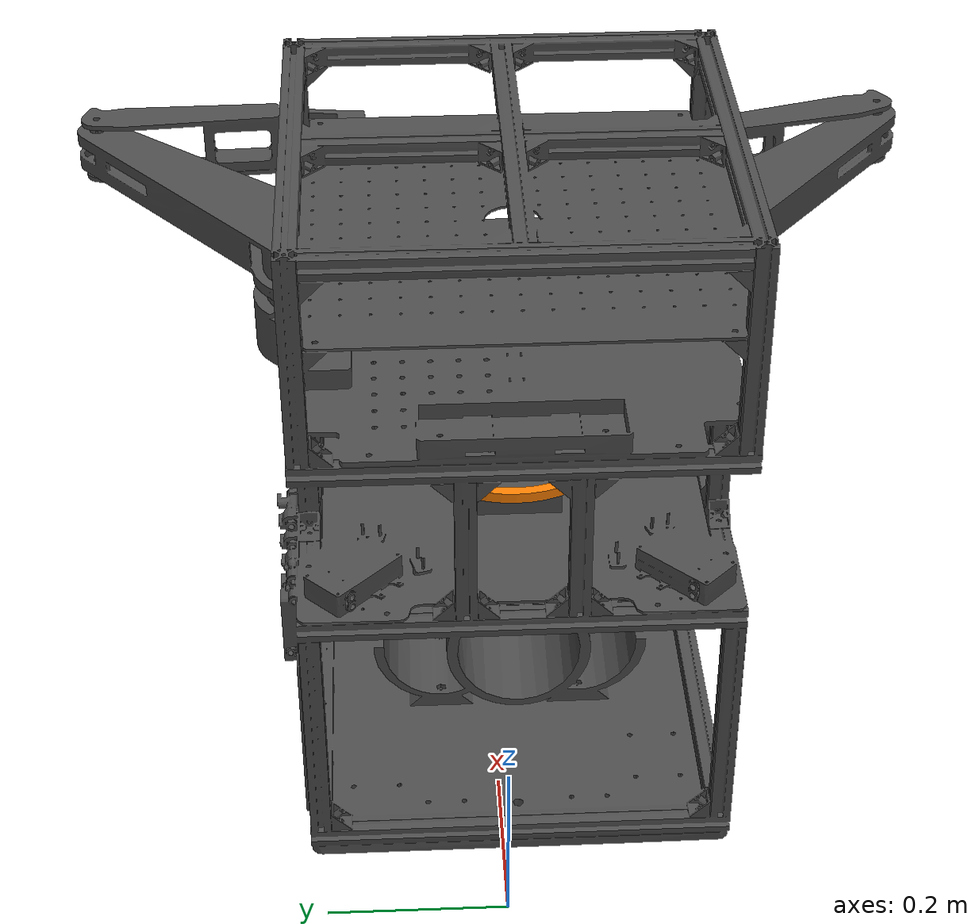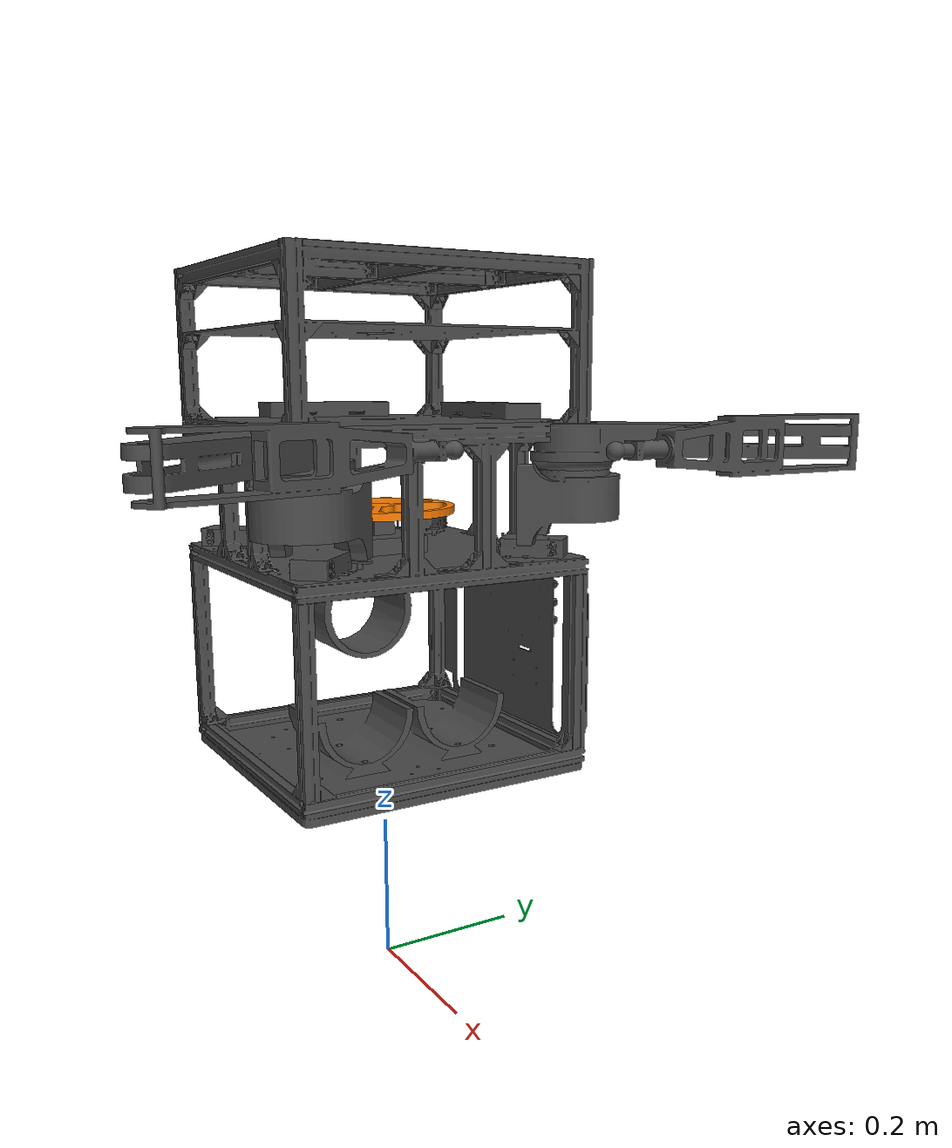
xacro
<?xml version="1.0"?>
<robot xmlns:xacro="http://www.ros.org/wiki/xacro" name="pingu_v2">

  <!-- Enable setting arguments from the launch file -->
  <xacro:arg name="prefix" default="" />

  <!-- Include Macros -->
  <xacro:include filename="macros/materials.macros.xacro"/>
  <xacro:include filename="macros/utils.macros.xacro"/>

  <!-- Import RW description and Ros2 Control-->
  <xacro:include filename="rw/rw.macro.xacro" />
  <xacro:include filename="rw/rw.ros2_control.xacro" />

  <!-- Include Levion Arms Desciption and Ros2 Control-->
  <xacro:include filename="arms/levion.property.xacro"/>
  <xacro:include filename="arms/levion_arm.macros.xacro"/>
  <xacro:include filename="arms/levion_arm.ros2_control.xacro"/>

  <!-- World Link -->
  <link name="world"/>

  <!-- Joins and Links for Floating -->
  <link name="anchor_link">
    <visual>
      <geometry>
        <box size="0.001 0.001 0.001"></box>
      </geometry>
      <material name="levion_black"/>
      <origin xyz="0 0 0" rpy="0 0 0"/>
    </visual>
    <collision>
      <geometry>
        <box size="0.001 0.001 0.001"></box>
      </geometry>
      <origin xyz="0 0 0" rpy="0 0 0"/>
    </collision>
    <inertial>
      <mass value="0.0001"/>
      <origin xyz="0 0 0" rpy="0 0 0"/>
      <inertia ixx="0.0001" ixy="0" ixz="0" iyy="0.0001" iyz="0" izz="0.0001"/>
    </inertial>
  </link>

  <joint name="anchor_joint" type="fixed">
    <origin xyz="0 0 0.2" rpy="0 0 0"/>
    <parent link="world"/>
    <child link="anchor_link"/>
  </joint>

  <link name="x_lock_link">
    <visual>
      <geometry>
        <box size="0.001 0.001 0.001"></box>
      </geometry>
      <material name="levion_black"/>
      <origin xyz="0 0 0" rpy="0 0 0"/>
    </visual>
    <collision>
      <geometry>
        <box size="0.001 0.001 0.001"></box>
      </geometry>
      <origin xyz="0 0 0" rpy="0 0 0"/>
    </collision>
    <inertial>
      <mass value="0.0001"/>
      <origin xyz="0 0 0" rpy="0 0 0"/>
      <inertia ixx="0.0001" ixy="0" ixz="0" iyy="0.0001" iyz="0" izz="0.0001"/>
    </inertial>
  </link>

  <joint name="x_lock_joint" type="prismatic">
    <origin xyz="0 0 0" rpy="0 0 0"/>
    <parent link="anchor_link"/>
    <child link="x_lock_link"/>
    <axis xyz="1 0 0"/>
    <limit effort="10.0" lower="-10" upper="10" velocity="10"/>
  </joint>

  <link name="y_lock_link">
    <visual>
      <geometry>
        <box size="0.001 0.001 0.001"></box>
      </geometry>
      <material name="levion_black"/>
      <origin xyz="0 0 0" rpy="0 0 0"/>
    </visual>
    <collision>
      <geometry>
        <box size="0.001 0.001 0.001"></box>
      </geometry>
      <origin xyz="0 0 0" rpy="0 0 0"/>
    </collision>
    <inertial>
      <mass value="0.0001"/>
      <origin xyz="0 0 0" rpy="0 0 0"/>
      <inertia ixx="0.0001" ixy="0" ixz="0" iyy="0.0001" iyz="0" izz="0.0001"/>
    </inertial>
  </link>

  <joint name="y_lock_joint" type="prismatic">
    <origin xyz="0 0 0" rpy="0 0 0"/>
    <parent link="x_lock_link"/>
    <child link="y_lock_link"/>
    <axis xyz="0 1 0"/>
    <limit effort="10.0" lower="-10" upper="10" velocity="10"/>
  </joint>

  <!-- Base Join and Link-->
  <joint name="base_joint" type="revolute">
    <origin xyz="0 0 0.1" rpy="0 0 0"/>
    <parent link="y_lock_link"/>
    <child link="base_link"/>
    <axis xyz="0 0 1"/>
    <limit effort="10.0" lower="-10" upper="10" velocity="10"/>
  </joint>

  <link name="base_link">
    <visual>
      <geometry>
        <mesh filename="package://pingu_description/mesh/base_link.stl" scale="1 1 1"/>
      </geometry>
      <material name="levion_black"/>
      <origin xyz="0 0 0" rpy="0 0 0"/>
    </visual>

    <collision>
      <geometry>
        <mesh filename="package://pingu_description/mesh/base_link.stl" scale="1 1 1"/>
      </geometry>
      <origin xyz="0 0 0" rpy="0 0 0"/> <!-- 0 0 0.3276 for box -->
    </collision>

    <inertial>
      <mass value="23.0"/>
      <origin xyz="0 0 0.3276" rpy="0 0 0"/>
      <inertia ixx="0.7" ixy="0" ixz="0" iyy="0.7" iyz="0" izz="0.5"/>
    </inertial>
  </link>

  <!-- RW description -->
  <xacro:rw parent="base_link" prefix="$(arg prefix)">
    <origin xyz="0 0 .2875" rpy="0 0 0" />
  </xacro:rw>

  <!-- Left Arm description -->
  <xacro:levion_arm parent="base_link" prefix="$(arg prefix)" left_right="left">
    <origin xyz="${.26*SQRT2_2} ${.26*SQRT2_2} .3475" rpy="0 0 ${PI/4}" />
  </xacro:levion_arm>

  <!-- Right Arm description -->
  <xacro:levion_arm parent="base_link" prefix="$(arg prefix)" left_right="right">
    <origin xyz="${.26*SQRT2_2} ${-.26*SQRT2_2} .3475" rpy="0 0 ${-PI/4}" />
  </xacro:levion_arm>

</robot>

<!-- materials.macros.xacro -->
<robot xmlns:xacro="http://www.ros.org/wiki/xacro">

    <material name="levion_black">
      <color rgba="0.3 0.3 0.3 1.0"/>
    </material>

    <material name="orange">
      <color rgba="1.0 0.5 0.0 1.0"/>
    </material>

    <material name="elec_blue">
      <color rgba="0.0 0.0 1.0 1.0"/>
    </material>
</robot>

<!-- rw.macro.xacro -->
<robot xmlns:xacro="http://www.ros.org/wiki/xacro">

  <xacro:macro name="rw" params="parent prefix *origin">

  <!-- Base Link -->
  <link name="${prefix}rw_base">
    <visual>
      <origin xyz="0 0 0" rpy="0 0 0"/>
      <geometry>
        <mesh filename="package://pingu_description/mesh/minimalist_motor_holder.stl" scale="0.001 0.001 0.001"/>
      </geometry>
      <material name="levion_black"/>
    </visual>
  </link>

  <joint name="${prefix}rw_base_joint" type="fixed">
    <xacro:insert_block name="origin" />
    <parent link="${parent}"/>
    <child link="${prefix}rw_base" />
  </joint>

  <!-- Middle Link -->
  <link name="${prefix}rw_rotor">
    <visual>
      <origin xyz="0 0 0" rpy="0 0 0"/>
      <geometry>
        <mesh filename="package://pingu_description/mesh/minimalist_reaction_wheel.stl" scale="0.001 0.001 0.001"/>
      </geometry>
      <material name="orange"/>
    </visual>

    <inertial>
      <origin xyz="0 0 0" rpy="0 0 0"/>
      <mass value="0.172"/>
      <inertia
        ixx="0.06" ixy="0.0" ixz="0.0"
        iyy="0.06" iyz="0.0"
        izz="0.1"/>
    </inertial>
  </link>

  <joint name="${prefix}rw_revolute_joint" type="revolute">
    <parent link="${prefix}rw_base"/>
    <child link="${prefix}rw_rotor"/>
    <origin xyz="0 0 0.05" rpy="0 0 0"/>
    <axis xyz="0 0 1"/>
    <limit effort="10.0" lower="-1e9" upper="1e9" velocity="100"/>
    <dynamics damping="0.5" friction="0.5"/>
  </joint>

  <!-- Middle Fix Link -->

  </xacro:macro>

</robot>

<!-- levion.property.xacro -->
<robot xmlns:xacro="http://ros.org/wiki/xacro">

  <!-- Math -->
  <xacro:property name="PI" value="3.1415926535"/>
  <xacro:property name="PI_2" value="${PI/2}"/>
  <xacro:property name="PI_4" value="${PI/4}"/>
  <xacro:property name="SQRT2" value="1.4142135623"/>
  <xacro:property name="SQRT2_2" value="${SQRT2/2}"/>
  <xacro:property name="SQRT3" value="1.7320508076"/>
  <xacro:property name="SQRT3_2" value="${SQRT3/2}"/>
  <xacro:property name="SAFETY_OFFSET" value="0.01"/>

  <!-- Default -->
  <xacro:property name="default_joint_position_limit" value="${PI/2-SAFETY_OFFSET}"/>
  <xacro:property name="default_joint_velocity_limit" value="1.0"/>
  <xacro:property name="default_joint_effort_limit" value="0.5"/>

  <xacro:property name="shoulder_lower" value="-${default_joint_position_limit}"/>
  <xacro:property name="shoulder_upper" value="${default_joint_position_limit}"/>
  <xacro:property name="shoulder_enc_offset" value="0"/>
  <xacro:property name="elbow_enc_offset" value="0.349"/>

  <!-- Left joints -->
  <xacro:property name="left_shoulder_lower" value="${shoulder_lower}"/>
  <xacro:property name="left_shoulder_upper" value="${shoulder_upper}"/>
  <xacro:property name="left_shoulder_velocity_limit" value="${default_joint_velocity_limit}"/>
  <xacro:property name="left_shoulder_effort_limit" value="${default_joint_effort_limit}"/>
  <xacro:property name="left_shoulder_enc_offset" value="${shoulder_enc_offset}"/>
  <xacro:property name="left_elbow_lower" value="${-3.4+SAFETY_OFFSET}"/>
  <xacro:property name="left_elbow_upper" value="${-1.2-SAFETY_OFFSET}"/>
  <xacro:property name="left_elbow_velocity_limit" value="${default_joint_velocity_limit}"/>
  <xacro:property name="left_elbow_effort_limit" value="${default_joint_effort_limit}"/>
  <xacro:property name="left_elbow_enc_offset" value="${elbow_enc_offset}"/>

  <!-- Right joints -->
  <xacro:property name="right_shoulder_lower" value="${-shoulder_upper}"/>
  <xacro:property name="right_shoulder_upper" value="${-shoulder_lower}"/>
  <xacro:property name="right_shoulder_velocity_limit" value="${default_joint_velocity_limit}"/>
  <xacro:property name="right_shoulder_effort_limit" value="${default_joint_effort_limit}"/>
  <xacro:property name="right_shoulder_enc_offset" value="${-shoulder_enc_offset}"/>
  <xacro:property name="right_elbow_lower" value="${1.5+SAFETY_OFFSET}"/>
  <xacro:property name="right_elbow_upper" value="${3.7-SAFETY_OFFSET}"/>
  <xacro:property name="right_elbow_velocity_limit" value="${default_joint_velocity_limit}"/>
  <xacro:property name="right_elbow_effort_limit" value="${default_joint_effort_limit}"/>
  <xacro:property name="right_elbow_enc_offset" value="${-elbow_enc_offset}"/>
</robot>

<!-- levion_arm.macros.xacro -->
<robot xmlns:xacro="http://www.ros.org/wiki/xacro">

  <xacro:macro name="levion_arm"
      params="parent prefix *origin left_right:=left">

  <xacro:include filename="arms/levion.property.xacro"/>

  <xacro:if value="${left_right == 'left'}">
    <xacro:property name="lr_shoulder_lower" default="${left_shoulder_lower}" />
    <xacro:property name="lr_shoulder_upper" default="${left_shoulder_upper}" />
    <xacro:property name="lr_shoulder_vel" default="${left_shoulder_velocity_limit}" />
    <xacro:property name="lr_shoulder_effort" default="${left_shoulder_effort_limit}" />
    <xacro:property name="lr_elbow_lower" default="${left_elbow_lower}" />
    <xacro:property name="lr_elbow_upper" default="${left_elbow_upper}" />
    <xacro:property name="lr_elbow_vel" default="${left_elbow_velocity_limit}" />
    <xacro:property name="lr_elbow_effort" default="${left_elbow_effort_limit}" />
    <xacro:property name="lr_link2_roll" default="${PI}" />
  </xacro:if>
  <xacro:if value="${left_right == 'right'}">
    <xacro:property name="lr_shoulder_lower" default="${right_shoulder_lower}" />
    <xacro:property name="lr_shoulder_upper" default="${right_shoulder_upper}" />
    <xacro:property name="lr_shoulder_vel" default="${right_shoulder_velocity_limit}" />
    <xacro:property name="lr_shoulder_effort" default="${right_shoulder_effort_limit}" />
    <xacro:property name="lr_elbow_lower" default="${right_elbow_lower}" />
    <xacro:property name="lr_elbow_upper" default="${right_elbow_upper}" />
    <xacro:property name="lr_elbow_vel" default="${right_elbow_velocity_limit}" />
    <xacro:property name="lr_elbow_effort" default="${right_elbow_effort_limit}" />
    <xacro:property name="lr_link2_roll" default="0" />
  </xacro:if>

  <joint name="${prefix}${left_right}_base_joint" type="fixed">
    <xacro:insert_block name="origin" />
    <parent link="${parent}"/>
    <child link="${prefix}${left_right}_link0" />
  </joint>

  <link name="${prefix}${left_right}_link0">
    <visual>
      <origin xyz="0 0 0" rpy="0 0 0"/>
      <geometry>
        <mesh filename="package://pingu_description/mesh/arm_link_0.stl" scale="1 1 1"/>
      </geometry>
      <material name="levion_black"/>
    </visual>
    <collision>
      <origin xyz="0 0 0" rpy="0 0 0"/>
      <geometry>
        <mesh filename="package://pingu_description/mesh/arm_link_0.stl" scale="1 1 1"/>
      </geometry>
    </collision>
    <inertial>
      <origin xyz="0 0 0" rpy="0 0 0"/>
      <mass value="0.5"/>
      <inertia ixx="0.0005" ixy="0.0" ixz="0.0" iyy="0.0005" iyz="0.0" izz="0.0005"/>
    </inertial>
  </link>

  <link name="${prefix}${left_right}_link1">
    <visual>
      <origin xyz="0 0 0" rpy="0 0 0"/>
      <geometry>
        <mesh filename="package://pingu_description/mesh/arm_link_1.stl" scale="1 1 1"/>
      </geometry>
      <material name="levion_black"/>
    </visual>
    <collision>
      <origin xyz="0 0 0" rpy="0 0 0"/>
      <geometry>
        <mesh filename="package://pingu_description/mesh/arm_link_1.stl" scale="1 1 1"/>
      </geometry>
    </collision>
    <inertial>
      <origin xyz="0.05 0 0" rpy="0 0 0"/>
      <mass value="0.6"/>
      <inertia ixx="0.0006" ixy="0.0" ixz="0.0" iyy="0.0006" iyz="0.0" izz="0.0006"/>
    </inertial>
  </link>

  <link name="${prefix}${left_right}_link2">
    <visual>
      <origin xyz="0 0 0" rpy="${lr_link2_roll} 0 0"/>
      <geometry>
        <mesh filename="package://pingu_description/mesh/arm_link_2.stl" scale="1 1 1"/>
      </geometry>
      <material name="levion_black"/>
    </visual>
    <collision>
      <origin xyz="0 0 0" rpy="${lr_link2_roll} 0 0"/>
      <geometry>
        <mesh filename="package://pingu_description/mesh/arm_link_2.stl" scale="1 1 1"/>
      </geometry>
    </collision>
    <inertial>
      <origin xyz="0 0 0" rpy="0 0 0"/>
      <mass value="0.1"/>
      <inertia ixx="0.0001" ixy="0.0" ixz="0.0" iyy="0.0001" iyz="0.0" izz="0.0001"/>
    </inertial>
  </link>

  <link name="${prefix}${left_right}_tool_link">
  </link>

  <joint name="${prefix}${left_right}_shoulder_joint" type="revolute">
    <origin xyz="0 0 0.0439" rpy="0 0 0"/>
    <parent link="${prefix}${left_right}_link0"/>
    <child link="${prefix}${left_right}_link1"/>
    <axis xyz="0 0 1"/>
    <limit lower="${lr_shoulder_lower}"
      upper="${lr_shoulder_upper}"
      effort="${lr_shoulder_effort}"
      velocity="${lr_shoulder_vel}"/>
  </joint>

  <joint name="${prefix}${left_right}_elbow_joint" type="revolute">
    <origin xyz="0.32 0 0.04685" rpy="0 0 0"/>
    <parent link="${prefix}${left_right}_link1"/>
    <child link="${prefix}${left_right}_link2"/>
    <axis xyz="0 0 1"/>
    <limit lower="${lr_elbow_lower}"
      upper="${lr_elbow_upper}"
      effort="${lr_elbow_effort}"
      velocity="${lr_elbow_vel}"/>
  </joint>

  <joint name="${prefix}${left_right}_tool_joint" type="fixed">
    <origin xyz=".255 0 0" rpy="${PI/2} 0 ${PI/2}"/>
    <parent link="${prefix}${left_right}_link2"/>
    <child link="${prefix}${left_right}_tool_link"/>
  </joint>
  </xacro:macro>
</robot>
